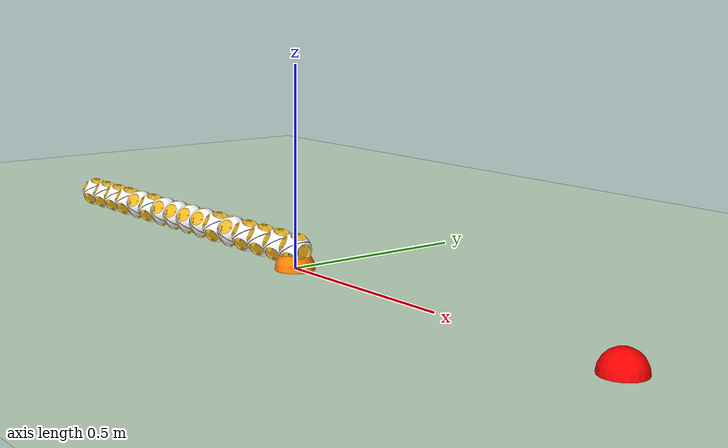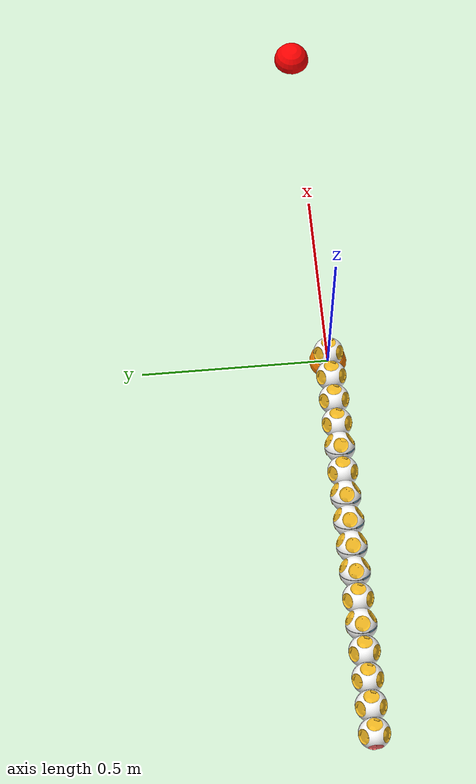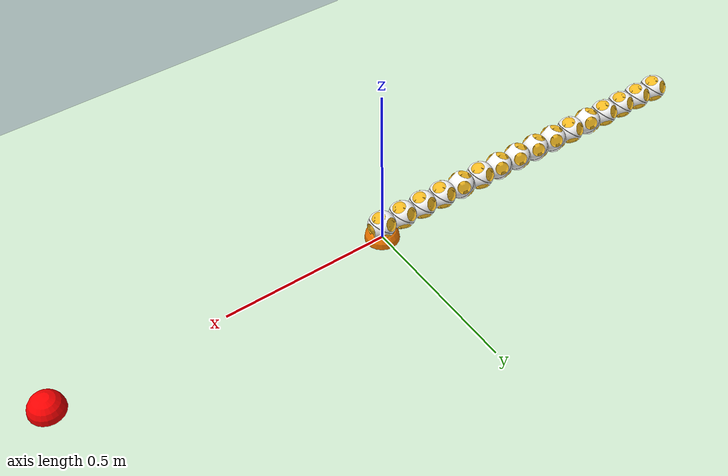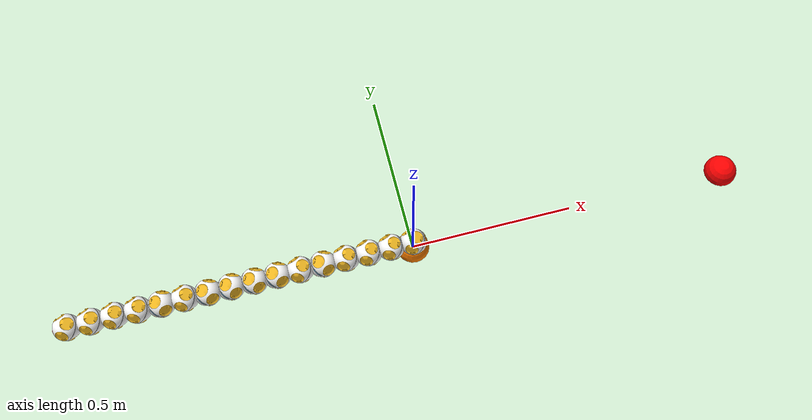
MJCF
<mujoco model="cellrobot(v1.0)">
    <compiler angle="radian" coordinate="local" meshdir="meshes" strippath="false" texturedir="textures"/>
    <option gravity="0 0 -9.81" integrator="RK4" timestep="0.001"/>

    <size nconmax="250" njmax="795" nstack="631875"/>

    <default>
        <geom conaffinity="1" condim="3" contype="1" friction="1 0.005 0.0001" margin="0.001" solimp=".99 .99 .01"
              solref=".01 1"/>
        <mesh scale="1 1 1"/>
        <joint armature="1" damping="15" limited="true"/>
        <default class="detacher">
            <geom conaffinity="1" margin="0.001" pos="0 0 0" rgba="0.93 0.71 0.13 1" type="mesh"/>
        </default>
        <default class="cell">
            <geom conaffinity="1" margin="0.001" solimp=".99 .99 .01" solref=".01 1" type="mesh"/>
        </default>
    </default>

    <asset>
        <mesh file="cell_gear/shell_gear.STL" name="cell_half_gear"/>
        <mesh file="cell_gear/detacher1.STL" name="detacher1"/>
        <mesh file="cell_gear/detacher2.STL" name="detacher2"/>
        <mesh file="cell_gear/detacher3.STL" name="detacher3"/>
        <mesh file="cell_gear/detacher4.STL" name="detacher4"/>
        <mesh file="cell_gear/circle_gear.STL" name="circle_gear"/>
        <mesh file="cell_gear/led_gear.STL" name="led_gear"/>

        <mesh file="cell_motor/shell_motor.STL" name="cell_half_motor"/>
        <mesh file="cell_motor/detacher5.STL" name="detacher5"/>
        <mesh file="cell_motor/detacher6.STL" name="detacher6"/>
        <mesh file="cell_motor/detacher7.STL" name="detacher7"/>
        <mesh file="cell_motor/detacher8.STL" name="detacher8"/>
        <mesh file="cell_motor/circle_motor.STL" name="circle_motor"/>
        <mesh file="cell_motor/led_motor.STL" name="led_motor"/>

        <texture builtin="checker" height="100" name="floor_tex" rgb1=".2 .3 .4" rgb2=".1 .2 .3" type="2d" width="100"/>
        <texture builtin="checker" height="100" name="texplane" rgb1="0 0 0" rgb2="0.8 0.8 0.8" type="2d" width="100"/>
        <texture file="block.png" gridlayout=".U..LFRB.D.." gridsize="3 4" name="texture:object" type="cube"/>

        <material name="floor_mat" reflectance="0.5" shininess="0.8" specular="0.7" texrepeat="10 10"
                  texture="floor_tex"/>
        <material name="MatPlane" reflectance="0.5" shininess="1" specular="1" texrepeat="30 30" texture="texplane"/>
        <material name="material:object" reflectance="0" shininess="0" specular="1" texture="texture:object"/>
    </asset>

    <visual>
        <map fogend="3" fogstart="1.5"/>
        <quality shadowsize="20480"/>
    </visual>

    <contact>
        <exclude body1="cell1_1" body2="cell1_2"/>
        <exclude body1="cell2_1" body2="cell2_2"/>
        <exclude body1="cell3_1" body2="cell3_2"/>
        <exclude body1="cell4_1" body2="cell4_2"/>
        <exclude body1="cell5_1" body2="cell5_2"/>
        <exclude body1="cell6_1" body2="cell6_2"/>
        <exclude body1="cell7_1" body2="cell7_2"/>
        <exclude body1="cell8_1" body2="cell8_2"/>
        <exclude body1="cell9_1" body2="cell9_2"/>
        <exclude body1="cell10_1" body2="cell10_2"/>
        <exclude body1="cell11_1" body2="cell11_2"/>
        <exclude body1="cell12_1" body2="cell12_2"/>
        <exclude body1="cell13_1" body2="cell13_2"/>
        <exclude body1="cell14_1" body2="cell14_2"/>
        <exclude body1="cell15_1" body2="cell15_2"/>
        <exclude body1="cell0_1" body2="cell1_2"/>
        <exclude body1="cell1_1" body2="cell2_2"/>
        <exclude body1="cell2_1" body2="cell3_2"/>
        <exclude body1="cell3_1" body2="cell4_2"/>
        <exclude body1="cell4_1" body2="cell5_2"/>
        <exclude body1="cell5_1" body2="cell6_2"/>
        <exclude body1="cell6_1" body2="cell7_2"/>
        <exclude body1="cell7_1" body2="cell8_2"/>
        <exclude body1="cell8_1" body2="cell9_2"/>
        <exclude body1="cell9_1" body2="cell10_2"/>
        <exclude body1="cell10_1" body2="cell11_2"/>
        <exclude body1="cell11_1" body2="cell12_2"/>
        <exclude body1="cell12_1" body2="cell13_2"/>
        <exclude body1="cell13_1" body2="cell14_2"/>
        <exclude body1="cell14_1" body2="cell15_2"/>
    </contact>

    <equality>
    </equality>

    <worldbody>

        <light cutoff="100" diffuse="1 1 1" dir="-0 0 -1.3" directional="true" exponent="1" pos="0 0 1.3"
               specular=".1 .1 .1"/>

        <geom conaffinity="1" condim="3" material="MatPlane" name="floor" pos="0 0 0" rgba="0.8 0.9 0.8 1"
              size="15 15 15" type="plane"/>

        <camera mode="trackcom" name="track" pos="0 -3 0.3" target="torso" xyaxes="1 0 0 0 0 1"/>
        <site name="target1" pos="0 0 0" rgba="1 0.5 0 1" size="0.05 " type="sphere"/>
        <site name="target2" pos="1 0 0" rgba="1 0 0 1" size="0.05 " type="sphere"/>
         <body euler="0 -0.62 2.3562" name="torso" pos="0  0  0.05">
            <geom name="torso_geom" pos="0  0  0" size="0.02" type="sphere"/>
            <joint armature="0" damping="0" limited="false" margin="0.01" name="root" pos="0 0 0" type="free"/>
            <body name="cell0_1" pos="0 0 -0.001">
                <inertial
                        fullinertia="5.338593e-05 5.2989770000000003e-05 6.634227000000001e-05 4.3267e-07 1.1089e-06 2.2068200000000003e-06"
                        mass="0.09814" pos="-0.0004 -0.00079 0.009519999999999999"/>
                <geom class="cell" mesh="cell_half_gear" pos="0  0  0" rgba="1 1 1 1"/>
                <geom class="detacher" mesh="detacher1" rgba="1 0.42 0.42 1"/>
                <geom class="detacher" mesh="detacher2"/>
                <geom class="detacher" mesh="detacher3"/>
                <geom class="detacher" mesh="detacher4"/>
                <geom class="cell" mesh="circle_gear" pos="0  0  0" rgba="0 0 0 1"/>
                <geom class="cell" mesh="led_gear" pos="0  0  0" rgba="0.53 0.81 0.98 1"/>
                <body name="cell0_2" pos="0 0 0">
                    <site name="cell0" pos="0 0 0 " size="0.001 0.001 0.001"/>
                    <joint axis="0 0 1" limited="false" name="joint:cell0" pos="0 0 -0.001"/>
                    <inertial
                            fullinertia="5.363084e-05 5.412367e-05 5.157385e-05 2.1730000000000002e-07 4.8619e-07 4.5697000000000005e-07"
                            mass="0.1346" pos="0.00027 0.00011999999999999999 -0.01269"/>
                    <geom class="cell" mesh="cell_half_motor" pos="0  0  0" rgba="1 1 1 1"/>
                    <geom class="detacher" mesh="detacher5"/>
                    <geom class="detacher" mesh="detacher6"/>
                    <geom class="detacher" mesh="detacher7"/>
                    <geom class="detacher" mesh="detacher8"/>
                    <geom class="cell" mesh="circle_motor" pos="0  0  0" rgba="0 0 0 1"/>
                    <geom class="cell" mesh="led_motor" pos="0  0  0" rgba="0.53 0.81 0.98 1"/>
                </body>
                <body name="cell1_2" pos="0.04030095 0.04030095 0.0402944" quat="1.0 0.0 0.0 0.0">
                    <inertial
                            fullinertia="5.363084e-05 5.412367e-05 5.157385e-05 2.1730000000000002e-07 4.8619e-07 4.5697000000000005e-07"
                            mass="0.1346" pos="0.00027 0.00011999999999999999 -0.01269"/>
                    <geom class="cell" mesh="cell_half_motor" pos="0  0  0" rgba="1 1 1 1"/>
                    <geom class="detacher" mesh="detacher5"/>
                    <geom class="detacher" mesh="detacher6"/>
                    <geom class="detacher" mesh="detacher7"/>
                    <geom class="detacher" mesh="detacher8"/>
                    <geom class="cell" mesh="circle_motor" pos="0  0  0" rgba="0 0 0 1"/>
                    <geom class="cell" mesh="led_motor" pos="0  0  0" rgba="0.53 0.81 0.98 1"/>
                    <body name="cell1_1" pos="0 0 0">
                        <site name="cell1" pos="0 0 0 " size="0.001 0.001 0.001"/>
                        <joint limited="false" name="joint:cell1" pos="0 0 -0.001"/>
                        <inertial
                                fullinertia="5.338593e-05 5.2989770000000003e-05 6.634227000000001e-05 4.3267e-07 1.1089e-06 2.2068200000000003e-06"
                                mass="0.09814" pos="-0.0004 -0.00079 0.009519999999999999"/>
                        <geom class="cell" mesh="cell_half_gear" pos="0  0  0" rgba="1 1 1 1"/>
                        <geom class="detacher" mesh="detacher1" rgba="1 0.42 0.42 1"/>
                        <geom class="detacher" mesh="detacher2"/>
                        <geom class="detacher" mesh="detacher3"/>
                        <geom class="detacher" mesh="detacher4"/>
                        <geom class="cell" mesh="circle_gear" pos="0  0  0" rgba="0 0 0 1"/>
                        <geom class="cell" mesh="led_gear" pos="0  0  0" rgba="0.53 0.81 0.98 1"/>
                        <body name="cell2_2" pos="0.04030095 0.04030095 0.0402944" quat="1.0 0.0 0.0 0.0">
                            <inertial
                                    fullinertia="5.363084e-05 5.412367e-05 5.157385e-05 2.1730000000000002e-07 4.8619e-07 4.5697000000000005e-07"
                                    mass="0.1346" pos="0.00027 0.00011999999999999999 -0.01269"/>
                            <geom class="cell" mesh="cell_half_motor" pos="0  0  0" rgba="1 1 1 1"/>
                            <geom class="detacher" mesh="detacher5"/>
                            <geom class="detacher" mesh="detacher6"/>
                            <geom class="detacher" mesh="detacher7"/>
                            <geom class="detacher" mesh="detacher8"/>
                            <geom class="cell" mesh="circle_motor" pos="0  0  0" rgba="0 0 0 1"/>
                            <geom class="cell" mesh="led_motor" pos="0  0  0" rgba="0.53 0.81 0.98 1"/>
                            <body name="cell2_1" pos="0 0 0">
                                <site name="cell2" pos="0 0 0 " size="0.001 0.001 0.001"/>
                                <joint limited="false" name="joint:cell2" pos="0 0 -0.001"/>
                                <inertial
                                        fullinertia="5.338593e-05 5.2989770000000003e-05 6.634227000000001e-05 4.3267e-07 1.1089e-06 2.2068200000000003e-06"
                                        mass="0.09814" pos="-0.0004 -0.00079 0.009519999999999999"/>
                                <geom class="cell" mesh="cell_half_gear" pos="0  0  0" rgba="1 1 1 1"/>
                                <geom class="detacher" mesh="detacher1" rgba="1 0.42 0.42 1"/>
                                <geom class="detacher" mesh="detacher2"/>
                                <geom class="detacher" mesh="detacher3"/>
                                <geom class="detacher" mesh="detacher4"/>
                                <geom class="cell" mesh="circle_gear" pos="0  0  0" rgba="0 0 0 1"/>
                                <geom class="cell" mesh="led_gear" pos="0  0  0" rgba="0.53 0.81 0.98 1"/>
                                <body name="cell3_2" pos="0.04030095 0.04030095 0.0402944" quat="1.0 0.0 0.0 0.0">
                                    <inertial
                                            fullinertia="5.363084e-05 5.412367e-05 5.157385e-05 2.1730000000000002e-07 4.8619e-07 4.5697000000000005e-07"
                                            mass="0.1346" pos="0.00027 0.00011999999999999999 -0.01269"/>
                                    <geom class="cell" mesh="cell_half_motor" pos="0  0  0" rgba="1 1 1 1"/>
                                    <geom class="detacher" mesh="detacher5"/>
                                    <geom class="detacher" mesh="detacher6"/>
                                    <geom class="detacher" mesh="detacher7"/>
                                    <geom class="detacher" mesh="detacher8"/>
                                    <geom class="cell" mesh="circle_motor" pos="0  0  0" rgba="0 0 0 1"/>
                                    <geom class="cell" mesh="led_motor" pos="0  0  0" rgba="0.53 0.81 0.98 1"/>
                                    <body name="cell3_1" pos="0 0 0">
                                        <site name="cell3" pos="0 0 0 " size="0.001 0.001 0.001"/>
                                        <joint limited="false" name="joint:cell3" pos="0 0 -0.001"/>
                                        <inertial
                                                fullinertia="5.338593e-05 5.2989770000000003e-05 6.634227000000001e-05 4.3267e-07 1.1089e-06 2.2068200000000003e-06"
                                                mass="0.09814" pos="-0.0004 -0.00079 0.009519999999999999"/>
                                        <geom class="cell" mesh="cell_half_gear" pos="0  0  0" rgba="1 1 1 1"/>
                                        <geom class="detacher" mesh="detacher1" rgba="1 0.42 0.42 1"/>
                                        <geom class="detacher" mesh="detacher2"/>
                                        <geom class="detacher" mesh="detacher3"/>
                                        <geom class="detacher" mesh="detacher4"/>
                                        <geom class="cell" mesh="circle_gear" pos="0  0  0" rgba="0 0 0 1"/>
                                        <geom class="cell" mesh="led_gear" pos="0  0  0" rgba="0.53 0.81 0.98 1"/>
                                        <body name="cell4_2" pos="0.04096758 0.04096758 0.03896092"
                                              quat="0.0 0.57738155 0.57738155 0.57728771">
                                            <inertial
                                                    fullinertia="5.363084e-05 5.412367e-05 5.157385e-05 2.1730000000000002e-07 4.8619e-07 4.5697000000000005e-07"
                                                    mass="0.1346" pos="0.00027 0.00011999999999999999 -0.01269"/>
                                            <geom class="cell" mesh="cell_half_motor" pos="0  0  0" rgba="1 1 1 1"/>
                                            <geom class="detacher" mesh="detacher5"/>
                                            <geom class="detacher" mesh="detacher6"/>
                                            <geom class="detacher" mesh="detacher7"/>
                                            <geom class="detacher" mesh="detacher8"/>
                                            <geom class="cell" mesh="circle_motor" pos="0  0  0" rgba="0 0 0 1"/>
                                            <geom class="cell" mesh="led_motor" pos="0  0  0" rgba="0.53 0.81 0.98 1"/>
                                            <body name="cell4_1" pos="0 0 0">
                                                <site name="cell4" pos="0 0 0 " size="0.001 0.001 0.001"/>
                                                <joint limited="false" name="joint:cell4" pos="0 0 -0.001"/>
                                                <inertial
                                                        fullinertia="5.338593e-05 5.2989770000000003e-05 6.634227000000001e-05 4.3267e-07 1.1089e-06 2.2068200000000003e-06"
                                                        mass="0.09814" pos="-0.0004 -0.00079 0.009519999999999999"/>
                                                <geom class="cell" mesh="cell_half_gear" pos="0  0  0" rgba="1 1 1 1"/>
                                                <geom class="detacher" mesh="detacher1" rgba="1 0.42 0.42 1"/>
                                                <geom class="detacher" mesh="detacher2"/>
                                                <geom class="detacher" mesh="detacher3"/>
                                                <geom class="detacher" mesh="detacher4"/>
                                                <geom class="cell" mesh="circle_gear" pos="0  0  0" rgba="0 0 0 1"/>
                                                <geom class="cell" mesh="led_gear" pos="0  0  0"
                                                      rgba="0.53 0.81 0.98 1"/>
                                                <body name="cell5_2" pos="0.04096758 0.04096758 0.03896092"
                                                      quat="0.0 0.57738155 0.57738155 0.57728771">
                                                    <inertial
                                                            fullinertia="5.363084e-05 5.412367e-05 5.157385e-05 2.1730000000000002e-07 4.8619e-07 4.5697000000000005e-07"
                                                            mass="0.1346"
                                                            pos="0.00027 0.00011999999999999999 -0.01269"/>
                                                    <geom class="cell" mesh="cell_half_motor" pos="0  0  0"
                                                          rgba="1 1 1 1"/>
                                                    <geom class="detacher" mesh="detacher5"/>
                                                    <geom class="detacher" mesh="detacher6"/>
                                                    <geom class="detacher" mesh="detacher7"/>
                                                    <geom class="detacher" mesh="detacher8"/>
                                                    <geom class="cell" mesh="circle_motor" pos="0  0  0"
                                                          rgba="0 0 0 1"/>
                                                    <geom class="cell" mesh="led_motor" pos="0  0  0"
                                                          rgba="0.53 0.81 0.98 1"/>
                                                    <body name="cell5_1" pos="0 0 0">
                                                        <site name="cell5" pos="0 0 0 " size="0.001 0.001 0.001"/>
                                                        <joint limited="false" name="joint:cell5" pos="0 0 -0.001"/>
                                                        <inertial
                                                                fullinertia="5.338593e-05 5.2989770000000003e-05 6.634227000000001e-05 4.3267e-07 1.1089e-06 2.2068200000000003e-06"
                                                                mass="0.09814"
                                                                pos="-0.0004 -0.00079 0.009519999999999999"/>
                                                        <geom class="cell" mesh="cell_half_gear" pos="0  0  0"
                                                              rgba="1 1 1 1"/>
                                                        <geom class="detacher" mesh="detacher1" rgba="1 0.42 0.42 1"/>
                                                        <geom class="detacher" mesh="detacher2"/>
                                                        <geom class="detacher" mesh="detacher3"/>
                                                        <geom class="detacher" mesh="detacher4"/>
                                                        <geom class="cell" mesh="circle_gear" pos="0  0  0"
                                                              rgba="0 0 0 1"/>
                                                        <geom class="cell" mesh="led_gear" pos="0  0  0"
                                                              rgba="0.53 0.81 0.98 1"/>
                                                        <body name="cell6_2" pos="0.04096758 0.04096758 0.03896092"
                                                              quat="0.0 0.57738155 0.57738155 0.57728771">
                                                            <inertial
                                                                    fullinertia="5.363084e-05 5.412367e-05 5.157385e-05 2.1730000000000002e-07 4.8619e-07 4.5697000000000005e-07"
                                                                    mass="0.1346"
                                                                    pos="0.00027 0.00011999999999999999 -0.01269"/>
                                                            <geom class="cell" mesh="cell_half_motor" pos="0  0  0"
                                                                  rgba="1 1 1 1"/>
                                                            <geom class="detacher" mesh="detacher5"/>
                                                            <geom class="detacher" mesh="detacher6"/>
                                                            <geom class="detacher" mesh="detacher7"/>
                                                            <geom class="detacher" mesh="detacher8"/>
                                                            <geom class="cell" mesh="circle_motor" pos="0  0  0"
                                                                  rgba="0 0 0 1"/>
                                                            <geom class="cell" mesh="led_motor" pos="0  0  0"
                                                                  rgba="0.53 0.81 0.98 1"/>
                                                            <body name="cell6_1" pos="0 0 0">
                                                                <site name="cell6" pos="0 0 0 "
                                                                      size="0.001 0.001 0.001"/>
                                                                <joint limited="false" name="joint:cell6"
                                                                       pos="0 0 -0.001"/>
                                                                <inertial
                                                                        fullinertia="5.338593e-05 5.2989770000000003e-05 6.634227000000001e-05 4.3267e-07 1.1089e-06 2.2068200000000003e-06"
                                                                        mass="0.09814"
                                                                        pos="-0.0004 -0.00079 0.009519999999999999"/>
                                                                <geom class="cell" mesh="cell_half_gear" pos="0  0  0"
                                                                      rgba="1 1 1 1"/>
                                                                <geom class="detacher" mesh="detacher1"
                                                                      rgba="1 0.42 0.42 1"/>
                                                                <geom class="detacher" mesh="detacher2"/>
                                                                <geom class="detacher" mesh="detacher3"/>
                                                                <geom class="detacher" mesh="detacher4"/>
                                                                <geom class="cell" mesh="circle_gear" pos="0  0  0"
                                                                      rgba="0 0 0 1"/>
                                                                <geom class="cell" mesh="led_gear" pos="0  0  0"
                                                                      rgba="0.53 0.81 0.98 1"/>
                                                                <body name="cell7_2"
                                                                      pos="0.04030095 0.04030095 0.0402944"
                                                                      quat="1.0 0.0 0.0 0.0">
                                                                    <inertial
                                                                            fullinertia="5.363084e-05 5.412367e-05 5.157385e-05 2.1730000000000002e-07 4.8619e-07 4.5697000000000005e-07"
                                                                            mass="0.1346"
                                                                            pos="0.00027 0.00011999999999999999 -0.01269"/>
                                                                    <geom class="cell" mesh="cell_half_motor"
                                                                          pos="0  0  0" rgba="1 1 1 1"/>
                                                                    <geom class="detacher" mesh="detacher5"/>
                                                                    <geom class="detacher" mesh="detacher6"/>
                                                                    <geom class="detacher" mesh="detacher7"/>
                                                                    <geom class="detacher" mesh="detacher8"/>
                                                                    <geom class="cell" mesh="circle_motor" pos="0  0  0"
                                                                          rgba="0 0 0 1"/>
                                                                    <geom class="cell" mesh="led_motor" pos="0  0  0"
                                                                          rgba="0.53 0.81 0.98 1"/>
                                                                    <body name="cell7_1" pos="0 0 0">
                                                                        <site name="cell7" pos="0 0 0 "
                                                                              size="0.001 0.001 0.001"/>
                                                                        <joint limited="false" name="joint:cell7"
                                                                               pos="0 0 -0.001"/>
                                                                        <inertial
                                                                                fullinertia="5.338593e-05 5.2989770000000003e-05 6.634227000000001e-05 4.3267e-07 1.1089e-06 2.2068200000000003e-06"
                                                                                mass="0.09814"
                                                                                pos="-0.0004 -0.00079 0.009519999999999999"/>
                                                                        <geom class="cell" mesh="cell_half_gear"
                                                                              pos="0  0  0" rgba="1 1 1 1"/>
                                                                        <geom class="detacher" mesh="detacher1"
                                                                              rgba="1 0.42 0.42 1"/>
                                                                        <geom class="detacher" mesh="detacher2"/>
                                                                        <geom class="detacher" mesh="detacher3"/>
                                                                        <geom class="detacher" mesh="detacher4"/>
                                                                        <geom class="cell" mesh="circle_gear"
                                                                              pos="0  0  0" rgba="0 0 0 1"/>
                                                                        <geom class="cell" mesh="led_gear" pos="0  0  0"
                                                                              rgba="0.53 0.81 0.98 1"/>
                                                                        <body name="cell8_2"
                                                                              pos="0.04030095 0.04030095 0.0402944"
                                                                              quat="1.0 0.0 0.0 0.0">
                                                                            <inertial
                                                                                    fullinertia="5.363084e-05 5.412367e-05 5.157385e-05 2.1730000000000002e-07 4.8619e-07 4.5697000000000005e-07"
                                                                                    mass="0.1346"
                                                                                    pos="0.00027 0.00011999999999999999 -0.01269"/>
                                                                            <geom class="cell" mesh="cell_half_motor"
                                                                                  pos="0  0  0" rgba="1 1 1 1"/>
                                                                            <geom class="detacher" mesh="detacher5"/>
                                                                            <geom class="detacher" mesh="detacher6"/>
                                                                            <geom class="detacher" mesh="detacher7"/>
                                                                            <geom class="detacher" mesh="detacher8"/>
                                                                            <geom class="cell" mesh="circle_motor"
                                                                                  pos="0  0  0" rgba="0 0 0 1"/>
                                                                            <geom class="cell" mesh="led_motor"
                                                                                  pos="0  0  0"
                                                                                  rgba="0.53 0.81 0.98 1"/>
                                                                            <body name="cell8_1" pos="0 0 0">
                                                                                <site name="cell8" pos="0 0 0 "
                                                                                      size="0.001 0.001 0.001"/>
                                                                                <joint limited="false"
                                                                                       name="joint:cell8"
                                                                                       pos="0 0 -0.001"/>
                                                                                <inertial
                                                                                        fullinertia="5.338593e-05 5.2989770000000003e-05 6.634227000000001e-05 4.3267e-07 1.1089e-06 2.2068200000000003e-06"
                                                                                        mass="0.09814"
                                                                                        pos="-0.0004 -0.00079 0.009519999999999999"/>
                                                                                <geom class="cell" mesh="cell_half_gear"
                                                                                      pos="0  0  0" rgba="1 1 1 1"/>
                                                                                <geom class="detacher" mesh="detacher1"
                                                                                      rgba="1 0.42 0.42 1"/>
                                                                                <geom class="detacher"
                                                                                      mesh="detacher2"/>
                                                                                <geom class="detacher"
                                                                                      mesh="detacher3"/>
                                                                                <geom class="detacher"
                                                                                      mesh="detacher4"/>
                                                                                <geom class="cell" mesh="circle_gear"
                                                                                      pos="0  0  0" rgba="0 0 0 1"/>
                                                                                <geom class="cell" mesh="led_gear"
                                                                                      pos="0  0  0"
                                                                                      rgba="0.53 0.81 0.98 1"/>
                                                                                <body name="cell9_2"
                                                                                      pos="0.04030095 0.04030095 0.0402944"
                                                                                      quat="1.0 0.0 0.0 0.0">
                                                                                    <inertial
                                                                                            fullinertia="5.363084e-05 5.412367e-05 5.157385e-05 2.1730000000000002e-07 4.8619e-07 4.5697000000000005e-07"
                                                                                            mass="0.1346"
                                                                                            pos="0.00027 0.00011999999999999999 -0.01269"/>
                                                                                    <geom class="cell"
                                                                                          mesh="cell_half_motor"
                                                                                          pos="0  0  0" rgba="1 1 1 1"/>
                                                                                    <geom class="detacher"
                                                                                          mesh="detacher5"/>
                                                                                    <geom class="detacher"
                                                                                          mesh="detacher6"/>
                                                                                    <geom class="detacher"
                                                                                          mesh="detacher7"/>
                                                                                    <geom class="detacher"
                                                                                          mesh="detacher8"/>
                                                                                    <geom class="cell"
                                                                                          mesh="circle_motor"
                                                                                          pos="0  0  0" rgba="0 0 0 1"/>
                                                                                    <geom class="cell" mesh="led_motor"
                                                                                          pos="0  0  0"
                                                                                          rgba="0.53 0.81 0.98 1"/>
                                                                                    <body name="cell9_1" pos="0 0 0">
                                                                                        <site name="cell9" pos="0 0 0 "
                                                                                              size="0.001 0.001 0.001"/>
                                                                                        <joint limited="false"
                                                                                               name="joint:cell9"
                                                                                               pos="0 0 -0.001"/>
                                                                                        <inertial
                                                                                                fullinertia="5.338593e-05 5.2989770000000003e-05 6.634227000000001e-05 4.3267e-07 1.1089e-06 2.2068200000000003e-06"
                                                                                                mass="0.09814"
                                                                                                pos="-0.0004 -0.00079 0.009519999999999999"/>
                                                                                        <geom class="cell"
                                                                                              mesh="cell_half_gear"
                                                                                              pos="0  0  0"
                                                                                              rgba="1 1 1 1"/>
                                                                                        <geom class="detacher"
                                                                                              mesh="detacher1"
                                                                                              rgba="1 0.42 0.42 1"/>
                                                                                        <geom class="detacher"
                                                                                              mesh="detacher2"/>
                                                                                        <geom class="detacher"
                                                                                              mesh="detacher3"/>
                                                                                        <geom class="detacher"
                                                                                              mesh="detacher4"/>
                                                                                        <geom class="cell"
                                                                                              mesh="circle_gear"
                                                                                              pos="0  0  0"
                                                                                              rgba="0 0 0 1"/>
                                                                                        <geom class="cell"
                                                                                              mesh="led_gear"
                                                                                              pos="0  0  0"
                                                                                              rgba="0.53 0.81 0.98 1"/>
                                                                                        <body name="cell10_2"
                                                                                              pos="0.04096758 0.04096758 0.03896092"
                                                                                              quat="0.0 0.57738155 0.57738155 0.57728771">
                                                                                            <inertial
                                                                                                    fullinertia="5.363084e-05 5.412367e-05 5.157385e-05 2.1730000000000002e-07 4.8619e-07 4.5697000000000005e-07"
                                                                                                    mass="0.1346"
                                                                                                    pos="0.00027 0.00011999999999999999 -0.01269"/>
                                                                                            <geom class="cell"
                                                                                                  mesh="cell_half_motor"
                                                                                                  pos="0  0  0"
                                                                                                  rgba="1 1 1 1"/>
                                                                                            <geom class="detacher"
                                                                                                  mesh="detacher5"/>
                                                                                            <geom class="detacher"
                                                                                                  mesh="detacher6"/>
                                                                                            <geom class="detacher"
                                                                                                  mesh="detacher7"/>
                                                                                            <geom class="detacher"
                                                                                                  mesh="detacher8"/>
                                                                                            <geom class="cell"
                                                                                                  mesh="circle_motor"
                                                                                                  pos="0  0  0"
                                                                                                  rgba="0 0 0 1"/>
                                                                                            <geom class="cell"
                                                                                                  mesh="led_motor"
                                                                                                  pos="0  0  0"
                                                                                                  rgba="0.53 0.81 0.98 1"/>
                                                                                            <body name="cell10_1"
                                                                                                  pos="0 0 0">
                                                                                                <site name="cell10"
                                                                                                      pos="0 0 0 "
                                                                                                      size="0.001 0.001 0.001"/>
                                                                                                <joint limited="false"
                                                                                                       name="joint:cell10"
                                                                                                       pos="0 0 -0.001"/>
                                                                                                <inertial
                                                                                                        fullinertia="5.338593e-05 5.2989770000000003e-05 6.634227000000001e-05 4.3267e-07 1.1089e-06 2.2068200000000003e-06"
                                                                                                        mass="0.09814"
                                                                                                        pos="-0.0004 -0.00079 0.009519999999999999"/>
                                                                                                <geom class="cell"
                                                                                                      mesh="cell_half_gear"
                                                                                                      pos="0  0  0"
                                                                                                      rgba="1 1 1 1"/>
                                                                                                <geom class="detacher"
                                                                                                      mesh="detacher1"
                                                                                                      rgba="1 0.42 0.42 1"/>
                                                                                                <geom class="detacher"
                                                                                                      mesh="detacher2"/>
                                                                                                <geom class="detacher"
                                                                                                      mesh="detacher3"/>
                                                                                                <geom class="detacher"
                                                                                                      mesh="detacher4"/>
                                                                                                <geom class="cell"
                                                                                                      mesh="circle_gear"
                                                                                                      pos="0  0  0"
                                                                                                      rgba="0 0 0 1"/>
                                                                                                <geom class="cell"
                                                                                                      mesh="led_gear"
                                                                                                      pos="0  0  0"
                                                                                                      rgba="0.53 0.81 0.98 1"/>
                                                                                                <body name="cell11_2"
                                                                                                      pos="0.04096758 0.04096758 0.03896092"
                                                                                                      quat="0.0 0.57738155 0.57738155 0.57728771">
                                                                                                    <inertial
                                                                                                            fullinertia="5.363084e-05 5.412367e-05 5.157385e-05 2.1730000000000002e-07 4.8619e-07 4.5697000000000005e-07"
                                                                                                            mass="0.1346"
                                                                                                            pos="0.00027 0.00011999999999999999 -0.01269"/>
                                                                                                    <geom class="cell"
                                                                                                          mesh="cell_half_motor"
                                                                                                          pos="0  0  0"
                                                                                                          rgba="1 1 1 1"/>
                                                                                                    <geom class="detacher"
                                                                                                          mesh="detacher5"/>
                                                                                                    <geom class="detacher"
                                                                                                          mesh="detacher6"/>
                                                                                                    <geom class="detacher"
                                                                                                          mesh="detacher7"/>
                                                                                                    <geom class="detacher"
                                                                                                          mesh="detacher8"/>
                                                                                                    <geom class="cell"
                                                                                                          mesh="circle_motor"
                                                                                                          pos="0  0  0"
                                                                                                          rgba="0 0 0 1"/>
                                                                                                    <geom class="cell"
                                                                                                          mesh="led_motor"
                                                                                                          pos="0  0  0"
                                                                                                          rgba="0.53 0.81 0.98 1"/>
                                                                                                    <body name="cell11_1"
                                                                                                          pos="0 0 0">
                                                                                                        <site name="cell11"
                                                                                                              pos="0 0 0 "
                                                                                                              size="0.001 0.001 0.001"/>
                                                                                                        <joint limited="false"
                                                                                                               name="joint:cell11"
                                                                                                               pos="0 0 -0.001"/>
                                                                                                        <inertial
                                                                                                                fullinertia="5.338593e-05 5.2989770000000003e-05 6.634227000000001e-05 4.3267e-07 1.1089e-06 2.2068200000000003e-06"
                                                                                                                mass="0.09814"
                                                                                                                pos="-0.0004 -0.00079 0.009519999999999999"/>
                                                                                                        <geom class="cell"
                                                                                                              mesh="cell_half_gear"
                                                                                                              pos="0  0  0"
                                                                                                              rgba="1 1 1 1"/>
                                                                                                        <geom class="detacher"
                                                                                                              mesh="detacher1"
                                                                                                              rgba="1 0.42 0.42 1"/>
                                                                                                        <geom class="detacher"
                                                                                                              mesh="detacher2"/>
                                                                                                        <geom class="detacher"
                                                                                                              mesh="detacher3"/>
                                                                                                        <geom class="detacher"
                                                                                                              mesh="detacher4"/>
                                                                                                        <geom class="cell"
                                                                                                              mesh="circle_gear"
                                                                                                              pos="0  0  0"
                                                                                                              rgba="0 0 0 1"/>
                                                                                                        <geom class="cell"
                                                                                                              mesh="led_gear"
                                                                                                              pos="0  0  0"
                                                                                                              rgba="0.53 0.81 0.98 1"/>
                                                                                                        <body name="cell12_2"
                                                                                                              pos="0.04096758 0.04096758 0.03896092"
                                                                                                              quat="0.0 0.57738155 0.57738155 0.57728771">
                                                                                                            <inertial
                                                                                                                    fullinertia="5.363084e-05 5.412367e-05 5.157385e-05 2.1730000000000002e-07 4.8619e-07 4.5697000000000005e-07"
                                                                                                                    mass="0.1346"
                                                                                                                    pos="0.00027 0.00011999999999999999 -0.01269"/>
                                                                                                            <geom class="cell"
                                                                                                                  mesh="cell_half_motor"
                                                                                                                  pos="0  0  0"
                                                                                                                  rgba="1 1 1 1"/>
                                                                                                            <geom class="detacher"
                                                                                                                  mesh="detacher5"/>
                                                                                                            <geom class="detacher"
                                                                                                                  mesh="detacher6"/>
                                                                                                            <geom class="detacher"
                                                                                                                  mesh="detacher7"/>
                                                                                                            <geom class="detacher"
                                                                                                                  mesh="detacher8"/>
                                                                                                            <geom class="cell"
                                                                                                                  mesh="circle_motor"
                                                                                                                  pos="0  0  0"
                                                                                                                  rgba="0 0 0 1"/>
                                                                                                            <geom class="cell"
                                                                                                                  mesh="led_motor"
                                                                                                                  pos="0  0  0"
                                                                                                                  rgba="0.53 0.81 0.98 1"/>
                                                                                                            <body name="cell12_1"
                                                                                                                  pos="0 0 0">
                                                                                                                <site name="cell12"
                                                                                                                      pos="0 0 0 "
                                                                                                                      size="0.001 0.001 0.001"/>
                                                                                                                <joint limited="false"
                                                                                                                       name="joint:cell12"
                                                                                                                       pos="0 0 -0.001"/>
                                                                                                                <inertial
                                                                                                                        fullinertia="5.338593e-05 5.2989770000000003e-05 6.634227000000001e-05 4.3267e-07 1.1089e-06 2.2068200000000003e-06"
                                                                                                                        mass="0.09814"
                                                                                                                        pos="-0.0004 -0.00079 0.009519999999999999"/>
                                                                                                                <geom class="cell"
                                                                                                                      mesh="cell_half_gear"
                                                                                                                      pos="0  0  0"
                                                                                                                      rgba="1 1 1 1"/>
                                                                                                                <geom class="detacher"
                                                                                                                      mesh="detacher1"
                                                                                                                      rgba="1 0.42 0.42 1"/>
                                                                                                                <geom class="detacher"
                                                                                                                      mesh="detacher2"/>
                                                                                                                <geom class="detacher"
                                                                                                                      mesh="detacher3"/>
                                                                                                                <geom class="detacher"
                                                                                                                      mesh="detacher4"/>
                                                                                                                <geom class="cell"
                                                                                                                      mesh="circle_gear"
                                                                                                                      pos="0  0  0"
                                                                                                                      rgba="0 0 0 1"/>
                                                                                                                <geom class="cell"
                                                                                                                      mesh="led_gear"
                                                                                                                      pos="0  0  0"
                                                                                                                      rgba="0.53 0.81 0.98 1"/>
                                                                                                                <body name="cell13_2"
                                                                                                                      pos="0.04030095 0.04030095 0.0402944"
                                                                                                                      quat="1.0 0.0 0.0 0.0">
                                                                                                                    <inertial
                                                                                                                            fullinertia="5.363084e-05 5.412367e-05 5.157385e-05 2.1730000000000002e-07 4.8619e-07 4.5697000000000005e-07"
                                                                                                                            mass="0.1346"
                                                                                                                            pos="0.00027 0.00011999999999999999 -0.01269"/>
                                                                                                                    <geom class="cell"
                                                                                                                          mesh="cell_half_motor"
                                                                                                                          pos="0  0  0"
                                                                                                                          rgba="1 1 1 1"/>
                                                                                                                    <geom class="detacher"
                                                                                                                          mesh="detacher5"/>
                                                                                                                    <geom class="detacher"
                                                                                                                          mesh="detacher6"/>
                                                                                                                    <geom class="detacher"
                                                                                                                          mesh="detacher7"/>
                                                                                                                    <geom class="detacher"
                                                                                                                          mesh="detacher8"/>
                                                                                                                    <geom class="cell"
                                                                                                                          mesh="circle_motor"
                                                                                                                          pos="0  0  0"
                                                                                                                          rgba="0 0 0 1"/>
                                                                                                                    <geom class="cell"
                                                                                                                          mesh="led_motor"
                                                                                                                          pos="0  0  0"
                                                                                                                          rgba="0.53 0.81 0.98 1"/>
                                                                                                                    <body name="cell13_1"
                                                                                                                          pos="0 0 0">
                                                                                                                        <site name="cell13"
                                                                                                                              pos="0 0 0 "
                                                                                                                              size="0.001 0.001 0.001"/>
                                                                                                                        <joint limited="false"
                                                                                                                               name="joint:cell13"
                                                                                                                               pos="0 0 -0.001"/>
                                                                                                                        <inertial
                                                                                                                                fullinertia="5.338593e-05 5.2989770000000003e-05 6.634227000000001e-05 4.3267e-07 1.1089e-06 2.2068200000000003e-06"
                                                                                                                                mass="0.09814"
                                                                                                                                pos="-0.0004 -0.00079 0.009519999999999999"/>
                                                                                                                        <geom class="cell"
                                                                                                                              mesh="cell_half_gear"
                                                                                                                              pos="0  0  0"
                                                                                                                              rgba="1 1 1 1"/>
                                                                                                                        <geom class="detacher"
                                                                                                                              mesh="detacher1"
                                                                                                                              rgba="1 0.42 0.42 1"/>
                                                                                                                        <geom class="detacher"
                                                                                                                              mesh="detacher2"/>
                                                                                                                        <geom class="detacher"
                                                                                                                              mesh="detacher3"/>
                                                                                                                        <geom class="detacher"
                                                                                                                              mesh="detacher4"/>
                                                                                                                        <geom class="cell"
                                                                                                                              mesh="circle_gear"
                                                                                                                              pos="0  0  0"
                                                                                                                              rgba="0 0 0 1"/>
                                                                                                                        <geom class="cell"
                                                                                                                              mesh="led_gear"
                                                                                                                              pos="0  0  0"
                                                                                                                              rgba="0.53 0.81 0.98 1"/>
                                                                                                                        <body name="cell14_2"
                                                                                                                              pos="0.04030095 0.04030095 0.0402944"
                                                                                                                              quat="1.0 0.0 0.0 0.0">
                                                                                                                            <inertial
                                                                                                                                    fullinertia="5.363084e-05 5.412367e-05 5.157385e-05 2.1730000000000002e-07 4.8619e-07 4.5697000000000005e-07"
                                                                                                                                    mass="0.1346"
                                                                                                                                    pos="0.00027 0.00011999999999999999 -0.01269"/>
                                                                                                                            <geom class="cell"
                                                                                                                                  mesh="cell_half_motor"
                                                                                                                                  pos="0  0  0"
                                                                                                                                  rgba="1 1 1 1"/>
                                                                                                                            <geom class="detacher"
                                                                                                                                  mesh="detacher5"/>
                                                                                                                            <geom class="detacher"
                                                                                                                                  mesh="detacher6"/>
                                                                                                                            <geom class="detacher"
                                                                                                                                  mesh="detacher7"/>
                                                                                                                            <geom class="detacher"
                                                                                                                                  mesh="detacher8"/>
                                                                                                                            <geom class="cell"
                                                                                                                                  mesh="circle_motor"
                                                                                                                                  pos="0  0  0"
                                                                                                                                  rgba="0 0 0 1"/>
                                                                                                                            <geom class="cell"
                                                                                                                                  mesh="led_motor"
                                                                                                                                  pos="0  0  0"
                                                                                                                                  rgba="0.53 0.81 0.98 1"/>
                                                                                                                            <body name="cell14_1"
                                                                                                                                  pos="0 0 0">
                                                                                                                                <site name="cell14"
                                                                                                                                      pos="0 0 0 "
                                                                                                                                      size="0.001 0.001 0.001"/>
                                                                                                                                <joint limited="false"
                                                                                                                                       name="joint:cell14"
                                                                                                                                       pos="0 0 -0.001"/>
                                                                                                                                <inertial
                                                                                                                                        fullinertia="5.338593e-05 5.2989770000000003e-05 6.634227000000001e-05 4.3267e-07 1.1089e-06 2.2068200000000003e-06"
                                                                                                                                        mass="0.09814"
                                                                                                                                        pos="-0.0004 -0.00079 0.009519999999999999"/>
                                                                                                                                <geom class="cell"
                                                                                                                                      mesh="cell_half_gear"
                                                                                                                                      pos="0  0  0"
                                                                                                                                      rgba="1 1 1 1"/>
                                                                                                                                <geom class="detacher"
                                                                                                                                      mesh="detacher1"
                                                                                                                                      rgba="1 0.42 0.42 1"/>
                                                                                                                                <geom class="detacher"
                                                                                                                                      mesh="detacher2"/>
                                                                                                                                <geom class="detacher"
                                                                                                                                      mesh="detacher3"/>
                                                                                                                                <geom class="detacher"
                                                                                                                                      mesh="detacher4"/>
                                                                                                                                <geom class="cell"
                                                                                                                                      mesh="circle_gear"
                                                                                                                                      pos="0  0  0"
                                                                                                                                      rgba="0 0 0 1"/>
                                                                                                                                <geom class="cell"
                                                                                                                                      mesh="led_gear"
                                                                                                                                      pos="0  0  0"
                                                                                                                                      rgba="0.53 0.81 0.98 1"/>
                                                                                                                                <body name="cell15_2"
                                                                                                                                      pos="0.04030095 0.04030095 0.0402944"
                                                                                                                                      quat="1.0 0.0 0.0 0.0">
                                                                                                                                    <inertial
                                                                                                                                            fullinertia="5.363084e-05 5.412367e-05 5.157385e-05 2.1730000000000002e-07 4.8619e-07 4.5697000000000005e-07"
                                                                                                                                            mass="0.1346"
                                                                                                                                            pos="0.00027 0.00011999999999999999 -0.01269"/>
                                                                                                                                    <geom class="cell"
                                                                                                                                          mesh="cell_half_motor"
                                                                                                                                          pos="0  0  0"
                                                                                                                                          rgba="1 1 1 1"/>
                                                                                                                                    <geom class="detacher"
                                                                                                                                          mesh="detacher5"/>
                                                                                                                                    <geom class="detacher"
                                                                                                                                          mesh="detacher6"/>
                                                                                                                                    <geom class="detacher"
                                                                                                                                          mesh="detacher7"/>
                                                                                                                                    <geom class="detacher"
                                                                                                                                          mesh="detacher8"/>
                                                                                                                                    <geom class="cell"
                                                                                                                                          mesh="circle_motor"
                                                                                                                                          pos="0  0  0"
                                                                                                                                          rgba="0 0 0 1"/>
                                                                                                                                    <geom class="cell"
                                                                                                                                          mesh="led_motor"
                                                                                                                                          pos="0  0  0"
                                                                                                                                          rgba="0.53 0.81 0.98 1"/>
                                                                                                                                    <body name="cell15_1"
                                                                                                                                          pos="0 0 0">
                                                                                                                                        <site name="cell15"
                                                                                                                                              pos="0 0 0 "
                                                                                                                                              size="0.001 0.001 0.001"/>
                                                                                                                                        <joint limited="false"
                                                                                                                                               name="joint:cell15"
                                                                                                                                               pos="0 0 -0.001"/>
                                                                                                                                        <inertial
                                                                                                                                                fullinertia="5.338593e-05 5.2989770000000003e-05 6.634227000000001e-05 4.3267e-07 1.1089e-06 2.2068200000000003e-06"
                                                                                                                                                mass="0.09814"
                                                                                                                                                pos="-0.0004 -0.00079 0.009519999999999999"/>
                                                                                                                                        <geom class="cell"
                                                                                                                                              mesh="cell_half_gear"
                                                                                                                                              pos="0  0  0"
                                                                                                                                              rgba="1 1 1 1"/>
                                                                                                                                        <geom class="detacher"
                                                                                                                                              mesh="detacher1"
                                                                                                                                              rgba="1 0.42 0.42 1"/>
                                                                                                                                        <geom class="detacher"
                                                                                                                                              mesh="detacher2"/>
                                                                                                                                        <geom class="detacher"
                                                                                                                                              mesh="detacher3"/>
                                                                                                                                        <geom class="detacher"
                                                                                                                                              mesh="detacher4"/>
                                                                                                                                        <geom class="cell"
                                                                                                                                              mesh="circle_gear"
                                                                                                                                              pos="0  0  0"
                                                                                                                                              rgba="0 0 0 1"/>
                                                                                                                                        <geom class="cell"
                                                                                                                                              mesh="led_gear"
                                                                                                                                              pos="0  0  0"
                                                                                                                                              rgba="0.53 0.81 0.98 1"/>
                                                                                                                                    </body>
                                                                                                                                </body>
                                                                                                                            </body>
                                                                                                                        </body>
                                                                                                                    </body>
                                                                                                                </body>
                                                                                                            </body>
                                                                                                        </body>
                                                                                                    </body>
                                                                                                </body>
                                                                                            </body>
                                                                                        </body>
                                                                                    </body>
                                                                                </body>
                                                                            </body>
                                                                        </body>
                                                                    </body>
                                                                </body>
                                                            </body>
                                                        </body>
                                                    </body>
                                                </body>
                                            </body>
                                        </body>
                                    </body>
                                </body>
                            </body>
                        </body>
                    </body>
                </body>
            </body>
        </body>
    </worldbody>

    <actuator>

        <motor ctrllimited="true" ctrlrange="-1.0 1.0" gear="50" joint="joint:cell0"/>
        <motor ctrllimited="true" ctrlrange="-1.0 1.0" gear="50" joint="joint:cell1"/>
        <motor ctrllimited="true" ctrlrange="-1.0 1.0" gear="50" joint="joint:cell2"/>
        <motor ctrllimited="true" ctrlrange="-1.0 1.0" gear="50" joint="joint:cell3"/>
        <motor ctrllimited="true" ctrlrange="-1.0 1.0" gear="50" joint="joint:cell4"/>
        <motor ctrllimited="true" ctrlrange="-1.0 1.0" gear="50" joint="joint:cell5"/>
        <motor ctrllimited="true" ctrlrange="-1.0 1.0" gear="50" joint="joint:cell6"/>
        <motor ctrllimited="true" ctrlrange="-1.0 1.0" gear="50" joint="joint:cell7"/>
        <motor ctrllimited="true" ctrlrange="-1.0 1.0" gear="50" joint="joint:cell8"/>
        <motor ctrllimited="true" ctrlrange="-1.0 1.0" gear="50" joint="joint:cell9"/>
        <motor ctrllimited="true" ctrlrange="-1.0 1.0" gear="50" joint="joint:cell10"/>
        <motor ctrllimited="true" ctrlrange="-1.0 1.0" gear="50" joint="joint:cell11"/>
        <motor ctrllimited="true" ctrlrange="-1.0 1.0" gear="50" joint="joint:cell12"/>
        <motor ctrllimited="true" ctrlrange="-1.0 1.0" gear="50" joint="joint:cell13"/>
        <motor ctrllimited="true" ctrlrange="-1.0 1.0" gear="50" joint="joint:cell14"/>
        <motor ctrllimited="true" ctrlrange="-1.0 1.0" gear="50" joint="joint:cell15"/>
    </actuator>
    <sensor>

        <torque name="cell0_toq" site="cell0"/>
        <torque name="cell1_toq" site="cell1"/>
        <torque name="cell2_toq" site="cell2"/>
        <torque name="cell3_toq" site="cell3"/>
        <torque name="cell4_toq" site="cell4"/>
        <torque name="cell5_toq" site="cell5"/>
        <torque name="cell6_toq" site="cell6"/>
        <torque name="cell7_toq" site="cell7"/>
        <torque name="cell8_toq" site="cell8"/>
        <torque name="cell9_toq" site="cell9"/>
        <torque name="cell10_toq" site="cell10"/>
        <torque name="cell11_toq" site="cell11"/>
        <torque name="cell12_toq" site="cell12"/>
        <torque name="cell13_toq" site="cell13"/>
        <torque name="cell14_toq" site="cell14"/>
        <torque name="cell15_toq" site="cell15"/>
    </sensor>
</mujoco>
